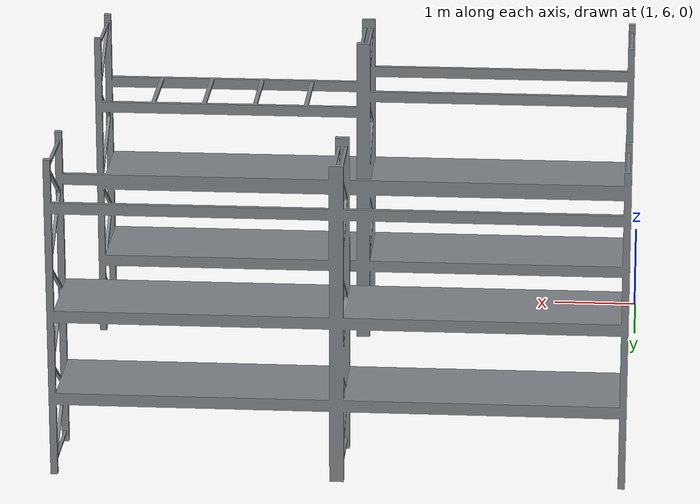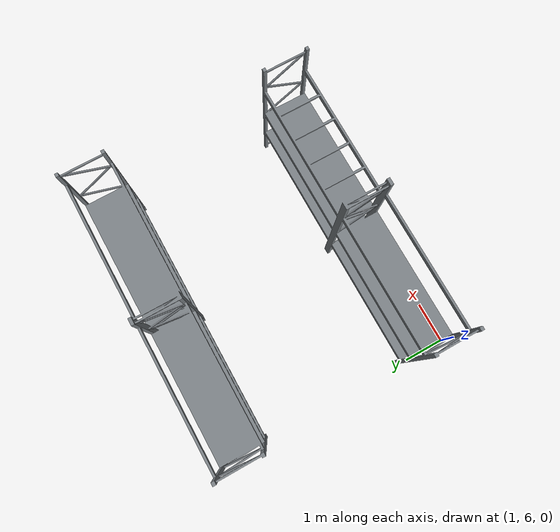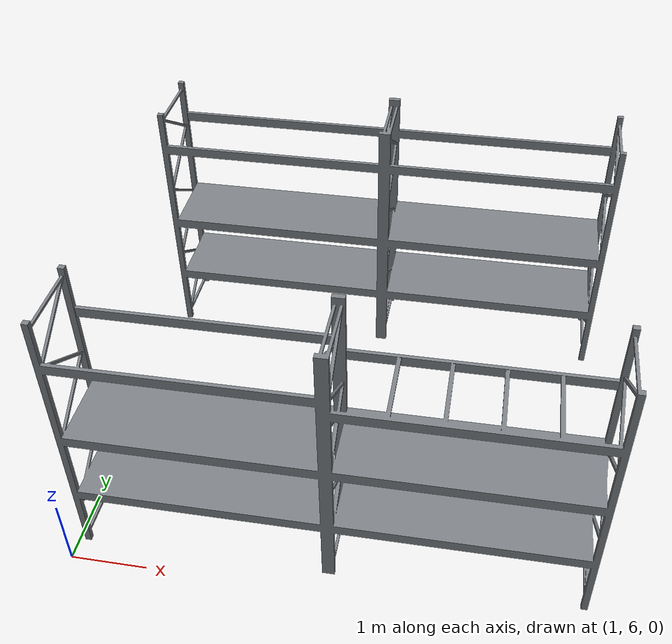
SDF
<?xml version="1.0"?>
<sdf version="1.9">
  <model name="fei_lrs_racks">
    <static>true</static>
    <link name="body">
        <visual name="warehouse_racks_visual">
          <geometry><mesh><uri>model://hangar/regal.dae</uri></mesh></geometry>
          <material>
            <ambient>0.18 0.19 0.20 1</ambient>
            <diffuse>0.48 0.50 0.52 1</diffuse>
            <specular>0.62 0.62 0.62 1</specular>
            <pbr><metal>
              <albedo_map>model://hangar/materials/textures/steel_regal_texture.jpg</albedo_map>
              <metalness>0.68</metalness><roughness>0.42</roughness>
            </metal></pbr>
          </material>
          <cast_shadows>true</cast_shadows>
        </visual>
        <collision name="rack_000_Policka_027">
          <pose>5.945 6.818186 1.975 -1.629208e-07 -0 0</pose>
          <geometry><box><size>3.09 1.05 0.01</size></box></geometry>
          <surface><friction><ode><mu>0.9</mu><mu2>0.9</mu2></ode></friction></surface>
        </collision>
        <collision name="rack_001_Policka_026">
          <pose>5.945 6.818186 0.9849999 -1.629208e-07 -0 0</pose>
          <geometry><box><size>3.09 1.05 0.01</size></box></geometry>
          <surface><friction><ode><mu>0.9</mu><mu2>0.9</mu2></ode></friction></surface>
        </collision>
        <collision name="rack_002_Policka_006">
          <pose>2.695 6.818186 1.975 -1.629208e-07 -0 0</pose>
          <geometry><box><size>3.09 1.05 0.01</size></box></geometry>
          <surface><friction><ode><mu>0.9</mu><mu2>0.9</mu2></ode></friction></surface>
        </collision>
        <collision name="rack_003_Policka_005">
          <pose>2.695 6.818186 0.9849999 -1.629208e-07 -0 0</pose>
          <geometry><box><size>3.09 1.05 0.01</size></box></geometry>
          <surface><friction><ode><mu>0.9</mu><mu2>0.9</mu2></ode></friction></surface>
        </collision>
        <collision name="rack_004_Policka_004">
          <pose>2.695 11.3602 1.975 -1.629208e-07 -0 0</pose>
          <geometry><box><size>3.09 1.05 0.01</size></box></geometry>
          <surface><friction><ode><mu>0.9</mu><mu2>0.9</mu2></ode></friction></surface>
        </collision>
        <collision name="rack_005_Policka_003">
          <pose>2.695 11.3602 0.9849999 -1.629208e-07 -0 0</pose>
          <geometry><box><size>3.09 1.05 0.01</size></box></geometry>
          <surface><friction><ode><mu>0.9</mu><mu2>0.9</mu2></ode></friction></surface>
        </collision>
        <collision name="rack_006_Policka_002">
          <pose>5.945001 11.3602 0.9849999 -1.629208e-07 -0 0</pose>
          <geometry><box><size>3.09 1.05 0.01</size></box></geometry>
          <surface><friction><ode><mu>0.9</mu><mu2>0.9</mu2></ode></friction></surface>
        </collision>
        <collision name="rack_007_Policka_001">
          <pose>5.945001 11.3602 1.975 -1.629208e-07 -0 0</pose>
          <geometry><box><size>3.09 1.05 0.01</size></box></geometry>
          <surface><friction><ode><mu>0.9</mu><mu2>0.9</mu2></ode></friction></surface>
        </collision>
        <collision name="rack_008_Krychle_027">
          <pose>6.871999 6.818186 2.935 -1.629206e-07 -0 0</pose>
          <geometry><box><size>0.05 0.95 0.04</size></box></geometry>
          <surface><friction><ode><mu>0.9</mu><mu2>0.9</mu2></ode></friction></surface>
        </collision>
        <collision name="rack_009_Krychle_026">
          <pose>5.636 6.818186 2.935 -1.629206e-07 -0 0</pose>
          <geometry><box><size>0.05 0.95 0.04</size></box></geometry>
          <surface><friction><ode><mu>0.9</mu><mu2>0.9</mu2></ode></friction></surface>
        </collision>
        <collision name="rack_010_Krychle_025">
          <pose>5.945 7.318186 2.895 -1.629208e-07 -0 0</pose>
          <geometry><box><size>3.09 0.05 0.13</size></box></geometry>
          <surface><friction><ode><mu>0.9</mu><mu2>0.9</mu2></ode></friction></surface>
        </collision>
        <collision name="rack_011_Krychle_024">
          <pose>5.945 7.318186 1.905 -1.629208e-07 -0 0</pose>
          <geometry><box><size>3.09 0.05 0.13</size></box></geometry>
          <surface><friction><ode><mu>0.9</mu><mu2>0.9</mu2></ode></friction></surface>
        </collision>
        <collision name="rack_012_Krychle_023">
          <pose>5.945 7.318186 0.915 -1.629208e-07 -0 0</pose>
          <geometry><box><size>3.09 0.05 0.13</size></box></geometry>
          <surface><friction><ode><mu>0.9</mu><mu2>0.9</mu2></ode></friction></surface>
        </collision>
        <collision name="rack_013_Krychle_022">
          <pose>5.945 6.318186 2.895 -1.629208e-07 -0 0</pose>
          <geometry><box><size>3.09 0.05 0.13</size></box></geometry>
          <surface><friction><ode><mu>0.9</mu><mu2>0.9</mu2></ode></friction></surface>
        </collision>
        <collision name="rack_014_Krychle_021">
          <pose>5.945 6.318186 1.905 -1.629208e-07 -0 0</pose>
          <geometry><box><size>3.09 0.05 0.13</size></box></geometry>
          <surface><friction><ode><mu>0.9</mu><mu2>0.9</mu2></ode></friction></surface>
        </collision>
        <collision name="rack_015_Krychle_020">
          <pose>5.945 6.318186 0.915 -1.629208e-07 -0 0</pose>
          <geometry><box><size>3.09 0.05 0.13</size></box></geometry>
          <surface><friction><ode><mu>0.9</mu><mu2>0.9</mu2></ode></friction></surface>
        </collision>
        <collision name="rack_016_Krychle_019">
          <pose>2.695 7.318186 3.095 -1.629208e-07 -0 0</pose>
          <geometry><box><size>3.09 0.05 0.13</size></box></geometry>
          <surface><friction><ode><mu>0.9</mu><mu2>0.9</mu2></ode></friction></surface>
        </collision>
        <collision name="rack_017_Krychle_018">
          <pose>2.695 7.318186 1.905 -1.629208e-07 -0 0</pose>
          <geometry><box><size>3.09 0.05 0.13</size></box></geometry>
          <surface><friction><ode><mu>0.9</mu><mu2>0.9</mu2></ode></friction></surface>
        </collision>
        <collision name="rack_018_Krychle_017">
          <pose>2.695 7.318186 0.915 -1.629208e-07 -0 0</pose>
          <geometry><box><size>3.09 0.05 0.13</size></box></geometry>
          <surface><friction><ode><mu>0.9</mu><mu2>0.9</mu2></ode></friction></surface>
        </collision>
        <collision name="rack_019_Krychle_016">
          <pose>2.695 6.318186 3.095 -1.629208e-07 -0 0</pose>
          <geometry><box><size>3.09 0.05 0.13</size></box></geometry>
          <surface><friction><ode><mu>0.9</mu><mu2>0.9</mu2></ode></friction></surface>
        </collision>
        <collision name="rack_020_Krychle_015">
          <pose>2.695 6.318186 1.905 -1.629208e-07 -0 0</pose>
          <geometry><box><size>3.09 0.05 0.13</size></box></geometry>
          <surface><friction><ode><mu>0.9</mu><mu2>0.9</mu2></ode></friction></surface>
        </collision>
        <collision name="rack_021_Krychle_014">
          <pose>2.695 6.318186 0.915 -1.629208e-07 -0 0</pose>
          <geometry><box><size>3.09 0.05 0.13</size></box></geometry>
          <surface><friction><ode><mu>0.9</mu><mu2>0.9</mu2></ode></friction></surface>
        </collision>
        <collision name="rack_022_Krychle_013">
          <pose>6.254 6.818186 2.935 -1.629206e-07 -0 0</pose>
          <geometry><box><size>0.05 0.95 0.04</size></box></geometry>
          <surface><friction><ode><mu>0.9</mu><mu2>0.9</mu2></ode></friction></surface>
        </collision>
        <collision name="rack_023_Krychle_012">
          <pose>2.694999 11.8602 3.195 -1.629208e-07 -0 0</pose>
          <geometry><box><size>3.09 0.05 0.13</size></box></geometry>
          <surface><friction><ode><mu>0.9</mu><mu2>0.9</mu2></ode></friction></surface>
        </collision>
        <collision name="rack_024_Krychle_011">
          <pose>2.694999 11.8602 1.905 -1.629208e-07 -0 0</pose>
          <geometry><box><size>3.09 0.05 0.13</size></box></geometry>
          <surface><friction><ode><mu>0.9</mu><mu2>0.9</mu2></ode></friction></surface>
        </collision>
        <collision name="rack_025_Krychle_010">
          <pose>2.694999 11.8602 0.915 -1.629208e-07 -0 0</pose>
          <geometry><box><size>3.09 0.05 0.13</size></box></geometry>
          <surface><friction><ode><mu>0.9</mu><mu2>0.9</mu2></ode></friction></surface>
        </collision>
        <collision name="rack_026_Krychle_009">
          <pose>2.694999 10.8602 3.195 -1.629208e-07 -0 0</pose>
          <geometry><box><size>3.09 0.05 0.13</size></box></geometry>
          <surface><friction><ode><mu>0.9</mu><mu2>0.9</mu2></ode></friction></surface>
        </collision>
        <collision name="rack_027_Krychle_008">
          <pose>2.694999 10.8602 1.905 -1.629208e-07 -0 0</pose>
          <geometry><box><size>3.09 0.05 0.13</size></box></geometry>
          <surface><friction><ode><mu>0.9</mu><mu2>0.9</mu2></ode></friction></surface>
        </collision>
        <collision name="rack_028_Krychle_007">
          <pose>2.694999 10.8602 0.915 -1.629208e-07 -0 0</pose>
          <geometry><box><size>3.09 0.05 0.13</size></box></geometry>
          <surface><friction><ode><mu>0.9</mu><mu2>0.9</mu2></ode></friction></surface>
        </collision>
        <collision name="rack_029_Krychle_006">
          <pose>5.945 10.8602 0.915 -1.629208e-07 -0 0</pose>
          <geometry><box><size>3.09 0.05 0.13</size></box></geometry>
          <surface><friction><ode><mu>0.9</mu><mu2>0.9</mu2></ode></friction></surface>
        </collision>
        <collision name="rack_030_Krychle_005">
          <pose>5.945 10.8602 1.905 -1.629208e-07 -0 0</pose>
          <geometry><box><size>3.09 0.05 0.13</size></box></geometry>
          <surface><friction><ode><mu>0.9</mu><mu2>0.9</mu2></ode></friction></surface>
        </collision>
        <collision name="rack_031_Krychle_004">
          <pose>5.945 10.8602 3.195 -1.629208e-07 -0 0</pose>
          <geometry><box><size>3.09 0.05 0.13</size></box></geometry>
          <surface><friction><ode><mu>0.9</mu><mu2>0.9</mu2></ode></friction></surface>
        </collision>
        <collision name="rack_032_Krychle_003">
          <pose>5.945 11.8602 0.915 -1.629208e-07 -0 0</pose>
          <geometry><box><size>3.09 0.05 0.13</size></box></geometry>
          <surface><friction><ode><mu>0.9</mu><mu2>0.9</mu2></ode></friction></surface>
        </collision>
        <collision name="rack_033_Krychle_002">
          <pose>5.945 11.8602 1.905 -1.629208e-07 -0 0</pose>
          <geometry><box><size>3.09 0.05 0.13</size></box></geometry>
          <surface><friction><ode><mu>0.9</mu><mu2>0.9</mu2></ode></friction></surface>
        </collision>
        <collision name="rack_034_Krychle_001">
          <pose>5.945 11.8602 3.195 -1.629208e-07 -0 0</pose>
          <geometry><box><size>3.09 0.05 0.13</size></box></geometry>
          <surface><friction><ode><mu>0.9</mu><mu2>0.9</mu2></ode></friction></surface>
        </collision>
        <collision name="rack_035_Krychle">
          <pose>5.018 6.818186 2.935 -1.629206e-07 -0 0</pose>
          <geometry><box><size>0.05 0.95 0.04</size></box></geometry>
          <surface><friction><ode><mu>0.9</mu><mu2>0.9</mu2></ode></friction></surface>
        </collision>
        <collision name="rack_036_Bok_079">
          <pose>4.28 6.328186 1.88 -1.629206e-07 -0 0</pose>
          <geometry><box><size>0.08 0.07 3.76</size></box></geometry>
          <surface><friction><ode><mu>0.9</mu><mu2>0.9</mu2></ode></friction></surface>
        </collision>
        <collision name="rack_037_Bok_078">
          <pose>4.28 7.308186 1.88 -1.629206e-07 -0 0</pose>
          <geometry><box><size>0.08 0.07 3.76</size></box></geometry>
          <surface><friction><ode><mu>0.9</mu><mu2>0.9</mu2></ode></friction></surface>
        </collision>
        <collision name="rack_038_Bok_077">
          <pose>4.28 6.818186 0.1146492 -1.570796 -0 0</pose>
          <geometry><box><size>0.035 0.035 0.91</size></box></geometry>
          <surface><friction><ode><mu>0.9</mu><mu2>0.9</mu2></ode></friction></surface>
        </collision>
        <collision name="rack_039_Bok_076">
          <pose>4.28 6.818186 3.645 -1.570796 -0 0</pose>
          <geometry><box><size>0.035 0.035 0.91</size></box></geometry>
          <surface><friction><ode><mu>0.9</mu><mu2>0.9</mu2></ode></friction></surface>
        </collision>
        <collision name="rack_040_Bok_075">
          <pose>4.28 6.818186 3.347894 -2.153702 -0 0</pose>
          <geometry><box><size>0.035 0.035 1.09</size></box></geometry>
          <surface><friction><ode><mu>0.9</mu><mu2>0.9</mu2></ode></friction></surface>
        </collision>
        <collision name="rack_041_Bok_074">
          <pose>4.28 6.818186 2.173314 -2.153702 -0 0</pose>
          <geometry><box><size>0.035 0.035 1.09</size></box></geometry>
          <surface><friction><ode><mu>0.9</mu><mu2>0.9</mu2></ode></friction></surface>
        </collision>
        <collision name="rack_042_Bok_073">
          <pose>4.28 6.818186 0.9990631 -2.153702 -0 0</pose>
          <geometry><box><size>0.035 0.035 1.09</size></box></geometry>
          <surface><friction><ode><mu>0.9</mu><mu2>0.9</mu2></ode></friction></surface>
        </collision>
        <collision name="rack_043_Bok_072">
          <pose>4.28 6.818186 0.4117734 -0.9878563 -0 0</pose>
          <geometry><box><size>0.035 0.03500001 1.09</size></box></geometry>
          <surface><friction><ode><mu>0.9</mu><mu2>0.9</mu2></ode></friction></surface>
        </collision>
        <collision name="rack_044_Bok_071">
          <pose>4.28 6.818186 1.586353 -0.9878563 -0 0</pose>
          <geometry><box><size>0.035 0.03500001 1.09</size></box></geometry>
          <surface><friction><ode><mu>0.9</mu><mu2>0.9</mu2></ode></friction></surface>
        </collision>
        <collision name="rack_045_Bok_070">
          <pose>4.28 6.818186 2.760604 -0.9878563 -0 0</pose>
          <geometry><box><size>0.035 0.03500001 1.09</size></box></geometry>
          <surface><friction><ode><mu>0.9</mu><mu2>0.9</mu2></ode></friction></surface>
        </collision>
        <collision name="rack_046_Bok_069">
          <pose>1.11 6.818186 2.760604 -2.153702 -0 0</pose>
          <geometry><box><size>0.035 0.035 1.09</size></box></geometry>
          <surface><friction><ode><mu>0.9</mu><mu2>0.9</mu2></ode></friction></surface>
        </collision>
        <collision name="rack_047_Bok_068">
          <pose>1.11 6.818186 1.586353 -2.153702 -0 0</pose>
          <geometry><box><size>0.035 0.035 1.09</size></box></geometry>
          <surface><friction><ode><mu>0.9</mu><mu2>0.9</mu2></ode></friction></surface>
        </collision>
        <collision name="rack_048_Bok_067">
          <pose>1.11 6.818186 0.4117734 -2.153702 -0 0</pose>
          <geometry><box><size>0.035 0.035 1.09</size></box></geometry>
          <surface><friction><ode><mu>0.9</mu><mu2>0.9</mu2></ode></friction></surface>
        </collision>
        <collision name="rack_049_Bok_066">
          <pose>1.11 6.818186 0.9990631 -0.9878913 -0 0</pose>
          <geometry><box><size>0.035 0.03499999 1.09</size></box></geometry>
          <surface><friction><ode><mu>0.9</mu><mu2>0.9</mu2></ode></friction></surface>
        </collision>
        <collision name="rack_050_Bok_065">
          <pose>1.11 6.818186 2.173314 -0.9878913 -0 0</pose>
          <geometry><box><size>0.035 0.03499999 1.09</size></box></geometry>
          <surface><friction><ode><mu>0.9</mu><mu2>0.9</mu2></ode></friction></surface>
        </collision>
        <collision name="rack_051_Bok_064">
          <pose>1.11 6.818186 3.347894 -0.9878913 -0 0</pose>
          <geometry><box><size>0.035 0.03499999 1.09</size></box></geometry>
          <surface><friction><ode><mu>0.9</mu><mu2>0.9</mu2></ode></friction></surface>
        </collision>
        <collision name="rack_052_Bok_063">
          <pose>1.11 6.818186 3.645 -1.570796 -0 0</pose>
          <geometry><box><size>0.035 0.035 0.91</size></box></geometry>
          <surface><friction><ode><mu>0.9</mu><mu2>0.9</mu2></ode></friction></surface>
        </collision>
        <collision name="rack_053_Bok_062">
          <pose>1.11 6.818186 0.1146492 -1.570796 -0 0</pose>
          <geometry><box><size>0.035 0.035 0.91</size></box></geometry>
          <surface><friction><ode><mu>0.9</mu><mu2>0.9</mu2></ode></friction></surface>
        </collision>
        <collision name="rack_054_Bok_061">
          <pose>1.11 7.308186 1.88 -1.629206e-07 -0 0</pose>
          <geometry><box><size>0.08 0.07 3.76</size></box></geometry>
          <surface><friction><ode><mu>0.9</mu><mu2>0.9</mu2></ode></friction></surface>
        </collision>
        <collision name="rack_055_Bok_060">
          <pose>1.11 6.328186 1.88 -1.629206e-07 -0 0</pose>
          <geometry><box><size>0.08 0.07 3.76</size></box></geometry>
          <surface><friction><ode><mu>0.9</mu><mu2>0.9</mu2></ode></friction></surface>
        </collision>
        <collision name="rack_056_Bok_059">
          <pose>7.53 6.818186 2.760604 -0.9878563 -0 0</pose>
          <geometry><box><size>0.035 0.03500001 1.09</size></box></geometry>
          <surface><friction><ode><mu>0.9</mu><mu2>0.9</mu2></ode></friction></surface>
        </collision>
        <collision name="rack_057_Bok_058">
          <pose>7.53 6.818186 1.586353 -0.9878563 -0 0</pose>
          <geometry><box><size>0.035 0.03500001 1.09</size></box></geometry>
          <surface><friction><ode><mu>0.9</mu><mu2>0.9</mu2></ode></friction></surface>
        </collision>
        <collision name="rack_058_Bok_057">
          <pose>7.53 6.818186 0.4117734 -0.9878563 -0 0</pose>
          <geometry><box><size>0.035 0.03500001 1.09</size></box></geometry>
          <surface><friction><ode><mu>0.9</mu><mu2>0.9</mu2></ode></friction></surface>
        </collision>
        <collision name="rack_059_Bok_056">
          <pose>7.53 6.818186 0.9990631 -2.153702 -0 0</pose>
          <geometry><box><size>0.035 0.035 1.09</size></box></geometry>
          <surface><friction><ode><mu>0.9</mu><mu2>0.9</mu2></ode></friction></surface>
        </collision>
        <collision name="rack_060_Bok_055">
          <pose>7.53 6.818186 2.173314 -2.153702 -0 0</pose>
          <geometry><box><size>0.035 0.035 1.09</size></box></geometry>
          <surface><friction><ode><mu>0.9</mu><mu2>0.9</mu2></ode></friction></surface>
        </collision>
        <collision name="rack_061_Bok_054">
          <pose>7.53 6.818186 3.347894 -2.153702 -0 0</pose>
          <geometry><box><size>0.035 0.035 1.09</size></box></geometry>
          <surface><friction><ode><mu>0.9</mu><mu2>0.9</mu2></ode></friction></surface>
        </collision>
        <collision name="rack_062_Bok_053">
          <pose>7.53 6.818186 3.645 -1.570796 -0 0</pose>
          <geometry><box><size>0.035 0.035 0.91</size></box></geometry>
          <surface><friction><ode><mu>0.9</mu><mu2>0.9</mu2></ode></friction></surface>
        </collision>
        <collision name="rack_063_Bok_052">
          <pose>7.53 6.818186 0.1146492 -1.570796 -0 0</pose>
          <geometry><box><size>0.035 0.035 0.91</size></box></geometry>
          <surface><friction><ode><mu>0.9</mu><mu2>0.9</mu2></ode></friction></surface>
        </collision>
        <collision name="rack_064_Bok_051">
          <pose>7.53 7.308186 1.88 -1.629206e-07 -0 0</pose>
          <geometry><box><size>0.08 0.07 3.76</size></box></geometry>
          <surface><friction><ode><mu>0.9</mu><mu2>0.9</mu2></ode></friction></surface>
        </collision>
        <collision name="rack_065_Bok_050">
          <pose>7.53 6.328186 1.88 -1.629206e-07 -0 0</pose>
          <geometry><box><size>0.08 0.07 3.76</size></box></geometry>
          <surface><friction><ode><mu>0.9</mu><mu2>0.9</mu2></ode></friction></surface>
        </collision>
        <collision name="rack_066_Bok_049">
          <pose>4.36 6.818186 2.760604 -2.153702 -0 0</pose>
          <geometry><box><size>0.035 0.035 1.09</size></box></geometry>
          <surface><friction><ode><mu>0.9</mu><mu2>0.9</mu2></ode></friction></surface>
        </collision>
        <collision name="rack_067_Bok_048">
          <pose>4.36 6.818186 1.586353 -2.153702 -0 0</pose>
          <geometry><box><size>0.035 0.035 1.09</size></box></geometry>
          <surface><friction><ode><mu>0.9</mu><mu2>0.9</mu2></ode></friction></surface>
        </collision>
        <collision name="rack_068_Bok_047">
          <pose>4.36 6.818186 0.4117734 -2.153702 -0 0</pose>
          <geometry><box><size>0.035 0.035 1.09</size></box></geometry>
          <surface><friction><ode><mu>0.9</mu><mu2>0.9</mu2></ode></friction></surface>
        </collision>
        <collision name="rack_069_Bok_046">
          <pose>4.36 6.818186 0.9990631 -0.9878913 -0 0</pose>
          <geometry><box><size>0.035 0.03499999 1.09</size></box></geometry>
          <surface><friction><ode><mu>0.9</mu><mu2>0.9</mu2></ode></friction></surface>
        </collision>
        <collision name="rack_070_Bok_045">
          <pose>4.36 6.818186 2.173314 -0.9878913 -0 0</pose>
          <geometry><box><size>0.035 0.03499999 1.09</size></box></geometry>
          <surface><friction><ode><mu>0.9</mu><mu2>0.9</mu2></ode></friction></surface>
        </collision>
        <collision name="rack_071_Bok_044">
          <pose>4.36 6.818186 3.347894 -0.9878913 -0 0</pose>
          <geometry><box><size>0.035 0.03499999 1.09</size></box></geometry>
          <surface><friction><ode><mu>0.9</mu><mu2>0.9</mu2></ode></friction></surface>
        </collision>
        <collision name="rack_072_Bok_043">
          <pose>4.36 6.818186 3.645 -1.570796 -0 0</pose>
          <geometry><box><size>0.035 0.035 0.91</size></box></geometry>
          <surface><friction><ode><mu>0.9</mu><mu2>0.9</mu2></ode></friction></surface>
        </collision>
        <collision name="rack_073_Bok_042">
          <pose>4.36 6.818186 0.1146492 -1.570796 -0 0</pose>
          <geometry><box><size>0.035 0.035 0.91</size></box></geometry>
          <surface><friction><ode><mu>0.9</mu><mu2>0.9</mu2></ode></friction></surface>
        </collision>
        <collision name="rack_074_Bok_041">
          <pose>4.36 7.308186 1.88 -1.629206e-07 -0 0</pose>
          <geometry><box><size>0.08 0.07 3.76</size></box></geometry>
          <surface><friction><ode><mu>0.9</mu><mu2>0.9</mu2></ode></friction></surface>
        </collision>
        <collision name="rack_075_Bok_040">
          <pose>4.28 10.8702 1.88 -1.629206e-07 -0 0</pose>
          <geometry><box><size>0.08 0.07 3.76</size></box></geometry>
          <surface><friction><ode><mu>0.9</mu><mu2>0.9</mu2></ode></friction></surface>
        </collision>
        <collision name="rack_076_Bok_039">
          <pose>4.36 10.8702 1.88 -1.629206e-07 -0 0</pose>
          <geometry><box><size>0.08 0.07 3.76</size></box></geometry>
          <surface><friction><ode><mu>0.9</mu><mu2>0.9</mu2></ode></friction></surface>
        </collision>
        <collision name="rack_077_Bok_038">
          <pose>4.36 11.8502 1.88 -1.629206e-07 -0 0</pose>
          <geometry><box><size>0.08 0.07 3.76</size></box></geometry>
          <surface><friction><ode><mu>0.9</mu><mu2>0.9</mu2></ode></friction></surface>
        </collision>
        <collision name="rack_078_Bok_037">
          <pose>4.36 11.3602 0.1146492 -1.570796 -0 0</pose>
          <geometry><box><size>0.035 0.035 0.91</size></box></geometry>
          <surface><friction><ode><mu>0.9</mu><mu2>0.9</mu2></ode></friction></surface>
        </collision>
        <collision name="rack_079_Bok_036">
          <pose>4.36 11.3602 3.645 -1.570796 -0 0</pose>
          <geometry><box><size>0.035 0.035 0.91</size></box></geometry>
          <surface><friction><ode><mu>0.9</mu><mu2>0.9</mu2></ode></friction></surface>
        </collision>
        <collision name="rack_080_Bok_035">
          <pose>4.36 11.3602 3.347894 -2.153702 -0 0</pose>
          <geometry><box><size>0.035 0.035 1.09</size></box></geometry>
          <surface><friction><ode><mu>0.9</mu><mu2>0.9</mu2></ode></friction></surface>
        </collision>
        <collision name="rack_081_Bok_034">
          <pose>4.36 11.3602 2.173314 -2.153702 -0 0</pose>
          <geometry><box><size>0.035 0.035 1.09</size></box></geometry>
          <surface><friction><ode><mu>0.9</mu><mu2>0.9</mu2></ode></friction></surface>
        </collision>
        <collision name="rack_082_Bok_033">
          <pose>4.36 11.3602 0.9990631 -2.153702 -0 0</pose>
          <geometry><box><size>0.035 0.035 1.09</size></box></geometry>
          <surface><friction><ode><mu>0.9</mu><mu2>0.9</mu2></ode></friction></surface>
        </collision>
        <collision name="rack_083_Bok_032">
          <pose>4.36 11.3602 0.4117734 -0.9878913 -0 0</pose>
          <geometry><box><size>0.035 0.03499999 1.09</size></box></geometry>
          <surface><friction><ode><mu>0.9</mu><mu2>0.9</mu2></ode></friction></surface>
        </collision>
        <collision name="rack_084_Bok_031">
          <pose>4.36 11.3602 1.586353 -0.9878913 -0 0</pose>
          <geometry><box><size>0.035 0.03499999 1.09</size></box></geometry>
          <surface><friction><ode><mu>0.9</mu><mu2>0.9</mu2></ode></friction></surface>
        </collision>
        <collision name="rack_085_Bok_030">
          <pose>4.36 11.3602 2.760604 -0.9878913 -0 0</pose>
          <geometry><box><size>0.035 0.03499999 1.09</size></box></geometry>
          <surface><friction><ode><mu>0.9</mu><mu2>0.9</mu2></ode></friction></surface>
        </collision>
        <collision name="rack_086_Bok_029">
          <pose>7.53 11.3602 2.760604 -2.153702 -0 0</pose>
          <geometry><box><size>0.035 0.035 1.09</size></box></geometry>
          <surface><friction><ode><mu>0.9</mu><mu2>0.9</mu2></ode></friction></surface>
        </collision>
        <collision name="rack_087_Bok_028">
          <pose>7.53 11.3602 1.586353 -2.153702 -0 0</pose>
          <geometry><box><size>0.035 0.035 1.09</size></box></geometry>
          <surface><friction><ode><mu>0.9</mu><mu2>0.9</mu2></ode></friction></surface>
        </collision>
        <collision name="rack_088_Bok_027">
          <pose>7.53 11.3602 0.4117734 -2.153702 -0 0</pose>
          <geometry><box><size>0.035 0.035 1.09</size></box></geometry>
          <surface><friction><ode><mu>0.9</mu><mu2>0.9</mu2></ode></friction></surface>
        </collision>
        <collision name="rack_089_Bok_026">
          <pose>7.53 11.3602 0.9990631 -0.9878913 -0 0</pose>
          <geometry><box><size>0.035 0.03499999 1.09</size></box></geometry>
          <surface><friction><ode><mu>0.9</mu><mu2>0.9</mu2></ode></friction></surface>
        </collision>
        <collision name="rack_090_Bok_025">
          <pose>7.53 11.3602 2.173314 -0.9878913 -0 0</pose>
          <geometry><box><size>0.035 0.03499999 1.09</size></box></geometry>
          <surface><friction><ode><mu>0.9</mu><mu2>0.9</mu2></ode></friction></surface>
        </collision>
        <collision name="rack_091_Bok_024">
          <pose>7.53 11.3602 3.347894 -0.9878913 -0 0</pose>
          <geometry><box><size>0.035 0.03499999 1.09</size></box></geometry>
          <surface><friction><ode><mu>0.9</mu><mu2>0.9</mu2></ode></friction></surface>
        </collision>
        <collision name="rack_092_Bok_023">
          <pose>7.53 11.3602 3.645 -1.570796 -0 0</pose>
          <geometry><box><size>0.035 0.035 0.91</size></box></geometry>
          <surface><friction><ode><mu>0.9</mu><mu2>0.9</mu2></ode></friction></surface>
        </collision>
        <collision name="rack_093_Bok_022">
          <pose>7.53 11.3602 0.1146492 -1.570796 -0 0</pose>
          <geometry><box><size>0.035 0.035 0.91</size></box></geometry>
          <surface><friction><ode><mu>0.9</mu><mu2>0.9</mu2></ode></friction></surface>
        </collision>
        <collision name="rack_094_Bok_021">
          <pose>7.53 11.8502 1.88 -1.629206e-07 -0 0</pose>
          <geometry><box><size>0.08 0.07 3.76</size></box></geometry>
          <surface><friction><ode><mu>0.9</mu><mu2>0.9</mu2></ode></friction></surface>
        </collision>
        <collision name="rack_095_Bok_020">
          <pose>7.53 10.8702 1.88 -1.629206e-07 -0 0</pose>
          <geometry><box><size>0.08 0.07 3.76</size></box></geometry>
          <surface><friction><ode><mu>0.9</mu><mu2>0.9</mu2></ode></friction></surface>
        </collision>
        <collision name="rack_096_Bok_019">
          <pose>4.28 11.8502 1.88 -1.629206e-07 -0 0</pose>
          <geometry><box><size>0.08 0.07 3.76</size></box></geometry>
          <surface><friction><ode><mu>0.9</mu><mu2>0.9</mu2></ode></friction></surface>
        </collision>
        <collision name="rack_097_Bok_018">
          <pose>4.28 11.3602 0.1146492 -1.570796 -0 0</pose>
          <geometry><box><size>0.035 0.035 0.91</size></box></geometry>
          <surface><friction><ode><mu>0.9</mu><mu2>0.9</mu2></ode></friction></surface>
        </collision>
        <collision name="rack_098_Bok_017">
          <pose>4.28 11.3602 3.645 -1.570796 -0 0</pose>
          <geometry><box><size>0.035 0.035 0.91</size></box></geometry>
          <surface><friction><ode><mu>0.9</mu><mu2>0.9</mu2></ode></friction></surface>
        </collision>
        <collision name="rack_099_Bok_016">
          <pose>4.28 11.3602 3.347894 -0.9878913 -0 0</pose>
          <geometry><box><size>0.035 0.03499999 1.09</size></box></geometry>
          <surface><friction><ode><mu>0.9</mu><mu2>0.9</mu2></ode></friction></surface>
        </collision>
        <collision name="rack_100_Bok_015">
          <pose>4.28 11.3602 2.173314 -0.9878913 -0 0</pose>
          <geometry><box><size>0.035 0.03499999 1.09</size></box></geometry>
          <surface><friction><ode><mu>0.9</mu><mu2>0.9</mu2></ode></friction></surface>
        </collision>
        <collision name="rack_101_Bok_014">
          <pose>4.28 11.3602 0.9990631 -0.9878913 -0 0</pose>
          <geometry><box><size>0.035 0.03499999 1.09</size></box></geometry>
          <surface><friction><ode><mu>0.9</mu><mu2>0.9</mu2></ode></friction></surface>
        </collision>
        <collision name="rack_102_Bok_013">
          <pose>4.28 11.3602 0.4117734 -2.153702 -0 0</pose>
          <geometry><box><size>0.035 0.035 1.09</size></box></geometry>
          <surface><friction><ode><mu>0.9</mu><mu2>0.9</mu2></ode></friction></surface>
        </collision>
        <collision name="rack_103_Bok_012">
          <pose>4.28 11.3602 1.586353 -2.153702 -0 0</pose>
          <geometry><box><size>0.035 0.035 1.09</size></box></geometry>
          <surface><friction><ode><mu>0.9</mu><mu2>0.9</mu2></ode></friction></surface>
        </collision>
        <collision name="rack_104_Bok_011">
          <pose>4.28 11.3602 2.760604 -2.153702 -0 0</pose>
          <geometry><box><size>0.035 0.035 1.09</size></box></geometry>
          <surface><friction><ode><mu>0.9</mu><mu2>0.9</mu2></ode></friction></surface>
        </collision>
        <collision name="rack_105_Bok_010">
          <pose>1.109999 11.3602 2.760604 -0.9878913 -0 0</pose>
          <geometry><box><size>0.035 0.03499999 1.09</size></box></geometry>
          <surface><friction><ode><mu>0.9</mu><mu2>0.9</mu2></ode></friction></surface>
        </collision>
        <collision name="rack_106_Bok_009">
          <pose>1.109999 11.3602 1.586353 -0.9878913 -0 0</pose>
          <geometry><box><size>0.035 0.03499999 1.09</size></box></geometry>
          <surface><friction><ode><mu>0.9</mu><mu2>0.9</mu2></ode></friction></surface>
        </collision>
        <collision name="rack_107_Bok_008">
          <pose>1.109999 11.3602 0.4117734 -0.9878913 -0 0</pose>
          <geometry><box><size>0.035 0.03499999 1.09</size></box></geometry>
          <surface><friction><ode><mu>0.9</mu><mu2>0.9</mu2></ode></friction></surface>
        </collision>
        <collision name="rack_108_Bok_007">
          <pose>1.109999 11.3602 0.9990631 -2.153702 -0 0</pose>
          <geometry><box><size>0.035 0.035 1.09</size></box></geometry>
          <surface><friction><ode><mu>0.9</mu><mu2>0.9</mu2></ode></friction></surface>
        </collision>
        <collision name="rack_109_Bok_006">
          <pose>1.109999 11.3602 2.173314 -2.153702 -0 0</pose>
          <geometry><box><size>0.035 0.035 1.09</size></box></geometry>
          <surface><friction><ode><mu>0.9</mu><mu2>0.9</mu2></ode></friction></surface>
        </collision>
        <collision name="rack_110_Bok_005">
          <pose>1.109999 11.3602 3.347894 -2.153702 -0 0</pose>
          <geometry><box><size>0.035 0.035 1.09</size></box></geometry>
          <surface><friction><ode><mu>0.9</mu><mu2>0.9</mu2></ode></friction></surface>
        </collision>
        <collision name="rack_111_Bok_004">
          <pose>1.109999 11.3602 3.645 -1.570796 -0 0</pose>
          <geometry><box><size>0.035 0.035 0.91</size></box></geometry>
          <surface><friction><ode><mu>0.9</mu><mu2>0.9</mu2></ode></friction></surface>
        </collision>
        <collision name="rack_112_Bok_003">
          <pose>1.109999 11.3602 0.1146492 -1.570796 -0 0</pose>
          <geometry><box><size>0.035 0.035 0.91</size></box></geometry>
          <surface><friction><ode><mu>0.9</mu><mu2>0.9</mu2></ode></friction></surface>
        </collision>
        <collision name="rack_113_Bok_002">
          <pose>1.109999 11.8502 1.88 -1.629206e-07 -0 0</pose>
          <geometry><box><size>0.08 0.07 3.76</size></box></geometry>
          <surface><friction><ode><mu>0.9</mu><mu2>0.9</mu2></ode></friction></surface>
        </collision>
        <collision name="rack_114_Bok_001">
          <pose>1.109999 10.8702 1.88 -1.629206e-07 -0 0</pose>
          <geometry><box><size>0.08 0.07 3.76</size></box></geometry>
          <surface><friction><ode><mu>0.9</mu><mu2>0.9</mu2></ode></friction></surface>
        </collision>
        <collision name="rack_115_Bok">
          <pose>4.36 6.328186 1.88 -1.629206e-07 -0 0</pose>
          <geometry><box><size>0.08 0.07 3.76</size></box></geometry>
          <surface><friction><ode><mu>0.9</mu><mu2>0.9</mu2></ode></friction></surface>
        </collision>
    </link>
  </model>
</sdf>
